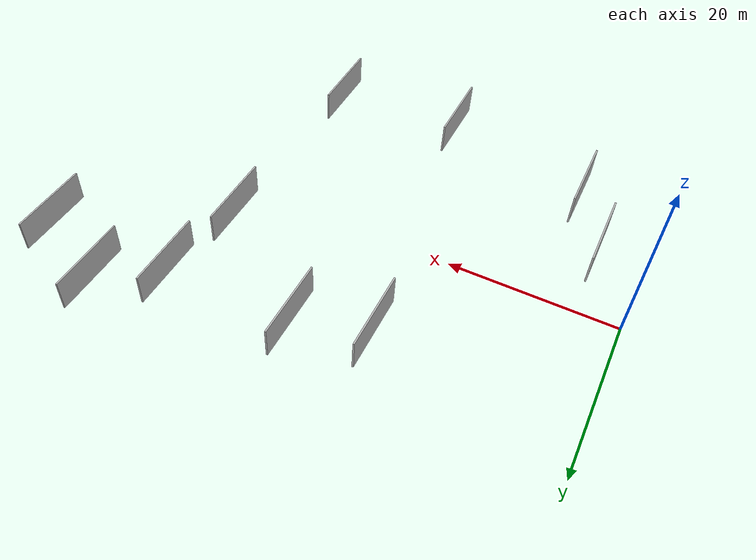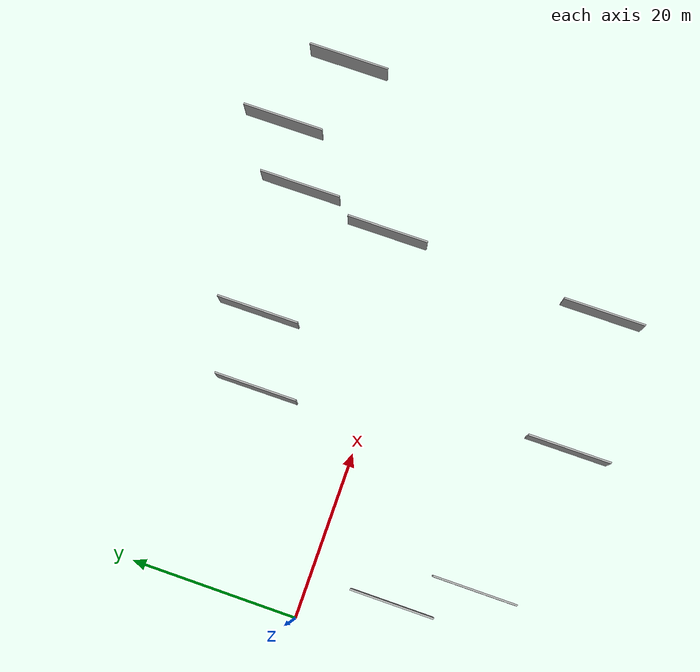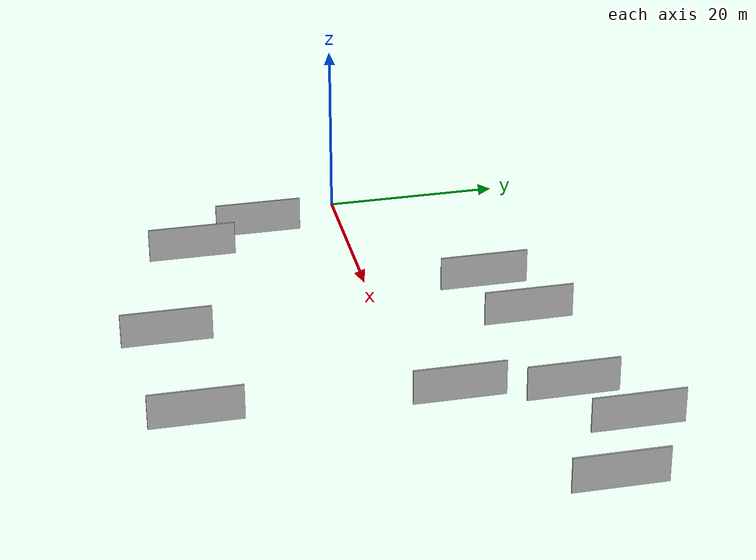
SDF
<sdf version="1.6">
 <world name="default">
  <scene>
   <sky><clouds><speed>12</speed></clouds></sky>
   <ambient>0.4 0.4 0.4 1</ambient>
   <background>0.7 0.7 0.7 1</background>
   <shadows>1</shadows>
  </scene>
  <gravity>0 0 -9.8066</gravity>
  <magnetic_field>6e-06 2.3e-05 -4.2e-05</magnetic_field>
  <physics default="0" name="default_physics" type="ode">
   <ode>
    <solver>
     <type>quick</type>
     <iters>10</iters>
     <sor>1.0</sor>
     <use_dynamic_moi_rescaling>0</use_dynamic_moi_rescaling>
    </solver>
    <constraints>
     <cfm>0</cfm>
     <erp>0.2</erp>
     <contact_max_correcting_vel>100</contact_max_correcting_vel>
     <contact_surface_layer>0.001</contact_surface_layer>
    </constraints>
   </ode>
   <max_step_size>0.004</max_step_size>
   <real_time_factor>1</real_time_factor>
   <real_time_update_rate>250</real_time_update_rate>
  </physics>
  <light name="sun" type="directional">
   <pose>0 0 10 0 0 0</pose>
   <diffuse>0.8 0.8 0.8 1</diffuse>
   <specular>0.2 0.2 0.2 1</specular>
   <attenuation>
    <range>1000</range>
    <constant>0.9</constant>
    <linear>0.01</linear>
    <quadratic>0.001</quadratic>
   </attenuation>
   <direction>-0.5 0.1 -0.9</direction>
  </light>
  <model name="grey_wall_1">
   <static>1</static>
   <pose>45.0936 -22.5704 0.0 0.000000 0.000000 1.570796</pose>
   <link name="link">
    <pose>0 0 2.00 0 0 0</pose>
    <collision name="collision"><geometry><box><size>10.00 0.2 4.00</size></box></geometry></collision>
    <visual name="visual">
     <cast_shadows>0</cast_shadows>
     <geometry><box><size>10.00 0.2 4.00</size></box></geometry>
     <material>
      <script>
       <uri>model://HANNAS_wall/materials/scripts</uri>
       <uri>model://HANNAS_wall/materials/textures</uri>
       <name>vrc/HANNAS_wall</name>
      </script>
     </material>
    </visual>
   </link>
  </model>
  <model name="grey_wall_2">
   <static>1</static>
   <pose>5.2400 -9.8778 0.0 0.000000 0.000000 1.570796</pose>
   <link name="link">
    <pose>0 0 2.00 0 0 0</pose>
    <collision name="collision"><geometry><box><size>10.00 0.2 4.00</size></box></geometry></collision>
    <visual name="visual">
     <cast_shadows>0</cast_shadows>
     <geometry><box><size>10.00 0.2 4.00</size></box></geometry>
     <material>
      <script>
       <uri>model://HANNAS_wall/materials/scripts</uri>
       <uri>model://HANNAS_wall/materials/textures</uri>
       <name>vrc/HANNAS_wall</name>
      </script>
     </material>
    </visual>
   </link>
  </model>
  <model name="grey_wall_3">
   <static>1</static>
   <pose>46.2184 4.7195 0.0 0.000000 0.000000 1.570796</pose>
   <link name="link">
    <pose>0 0 2.00 0 0 0</pose>
    <collision name="collision"><geometry><box><size>10.00 0.2 4.00</size></box></geometry></collision>
    <visual name="visual">
     <cast_shadows>0</cast_shadows>
     <geometry><box><size>10.00 0.2 4.00</size></box></geometry>
     <material>
      <script>
       <uri>model://HANNAS_wall/materials/scripts</uri>
       <uri>model://HANNAS_wall/materials/textures</uri>
       <name>vrc/HANNAS_wall</name>
      </script>
     </material>
    </visual>
   </link>
  </model>
  <model name="grey_wall_4">
   <static>1</static>
   <pose>48.0359 16.3906 0.0 0.000000 0.000000 1.570796</pose>
   <link name="link">
    <pose>0 0 2.00 0 0 0</pose>
    <collision name="collision"><geometry><box><size>10.00 0.2 4.00</size></box></geometry></collision>
    <visual name="visual">
     <cast_shadows>0</cast_shadows>
     <geometry><box><size>10.00 0.2 4.00</size></box></geometry>
     <material>
      <script>
       <uri>model://HANNAS_wall/materials/scripts</uri>
       <uri>model://HANNAS_wall/materials/textures</uri>
       <name>vrc/HANNAS_wall</name>
      </script>
     </material>
    </visual>
   </link>
  </model>
  <model name="grey_wall_5">
   <static>1</static>
   <pose>28.4730 -23.5596 0.0 0.000000 0.000000 1.570796</pose>
   <link name="link">
    <pose>0 0 2.00 0 0 0</pose>
    <collision name="collision"><geometry><box><size>10.00 0.2 4.00</size></box></geometry></collision>
    <visual name="visual">
     <cast_shadows>0</cast_shadows>
     <geometry><box><size>10.00 0.2 4.00</size></box></geometry>
     <material>
      <script>
       <uri>model://HANNAS_wall/materials/scripts</uri>
       <uri>model://HANNAS_wall/materials/textures</uri>
       <name>vrc/HANNAS_wall</name>
      </script>
     </material>
    </visual>
   </link>
  </model>
  <model name="grey_wall_6">
   <static>1</static>
   <pose>32.0909 15.9865 0.0 0.000000 0.000000 1.570796</pose>
   <link name="link">
    <pose>0 0 2.00 0 0 0</pose>
    <collision name="collision"><geometry><box><size>10.00 0.2 4.00</size></box></geometry></collision>
    <visual name="visual">
     <cast_shadows>0</cast_shadows>
     <geometry><box><size>10.00 0.2 4.00</size></box></geometry>
     <material>
      <script>
       <uri>model://HANNAS_wall/materials/scripts</uri>
       <uri>model://HANNAS_wall/materials/textures</uri>
       <name>vrc/HANNAS_wall</name>
      </script>
     </material>
    </visual>
   </link>
  </model>
  <model name="grey_wall_7">
   <static>1</static>
   <pose>23.4271 13.1058 0.0 0.000000 0.000000 1.570796</pose>
   <link name="link">
    <pose>0 0 2.00 0 0 0</pose>
    <collision name="collision"><geometry><box><size>10.00 0.2 4.00</size></box></geometry></collision>
    <visual name="visual">
     <cast_shadows>0</cast_shadows>
     <geometry><box><size>10.00 0.2 4.00</size></box></geometry>
     <material>
      <script>
       <uri>model://HANNAS_wall/materials/scripts</uri>
       <uri>model://HANNAS_wall/materials/textures</uri>
       <name>vrc/HANNAS_wall</name>
      </script>
     </material>
    </visual>
   </link>
  </model>
  <model name="grey_wall_8">
   <static>1</static>
   <pose>9.7132 -18.3250 0.0 0.000000 0.000000 1.570796</pose>
   <link name="link">
    <pose>0 0 2.00 0 0 0</pose>
    <collision name="collision"><geometry><box><size>10.00 0.2 4.00</size></box></geometry></collision>
    <visual name="visual">
     <cast_shadows>0</cast_shadows>
     <geometry><box><size>10.00 0.2 4.00</size></box></geometry>
     <material>
      <script>
       <uri>model://HANNAS_wall/materials/scripts</uri>
       <uri>model://HANNAS_wall/materials/textures</uri>
       <name>vrc/HANNAS_wall</name>
      </script>
     </material>
    </visual>
   </link>
  </model>
  <model name="grey_wall_9">
   <static>1</static>
   <pose>64.9827 16.1517 0.0 0.000000 0.000000 1.570796</pose>
   <link name="link">
    <pose>0 0 2.00 0 0 0</pose>
    <collision name="collision"><geometry><box><size>10.00 0.2 4.00</size></box></geometry></collision>
    <visual name="visual">
     <cast_shadows>0</cast_shadows>
     <geometry><box><size>10.00 0.2 4.00</size></box></geometry>
     <material>
      <script>
       <uri>model://HANNAS_wall/materials/scripts</uri>
       <uri>model://HANNAS_wall/materials/textures</uri>
       <name>vrc/HANNAS_wall</name>
      </script>
     </material>
    </visual>
   </link>
  </model>
  <model name="grey_wall_10">
   <static>1</static>
   <pose>55.1814 21.1292 0.0 0.000000 0.000000 1.570796</pose>
   <link name="link">
    <pose>0 0 2.00 0 0 0</pose>
    <collision name="collision"><geometry><box><size>10.00 0.2 4.00</size></box></geometry></collision>
    <visual name="visual">
     <cast_shadows>0</cast_shadows>
     <geometry><box><size>10.00 0.2 4.00</size></box></geometry>
     <material>
      <script>
       <uri>model://HANNAS_wall/materials/scripts</uri>
       <uri>model://HANNAS_wall/materials/textures</uri>
       <name>vrc/HANNAS_wall</name>
      </script>
     </material>
    </visual>
   </link>
  </model>
 </world>
</sdf>
